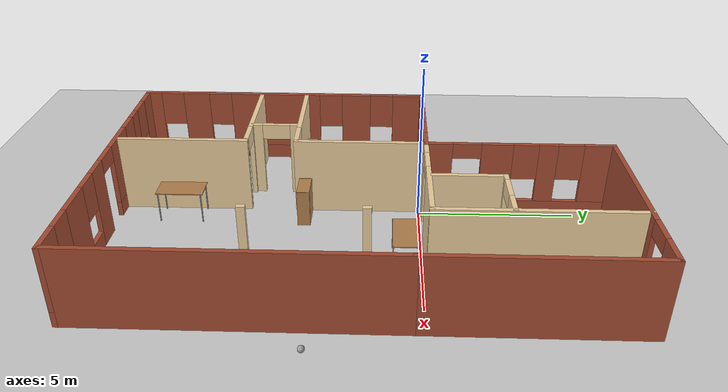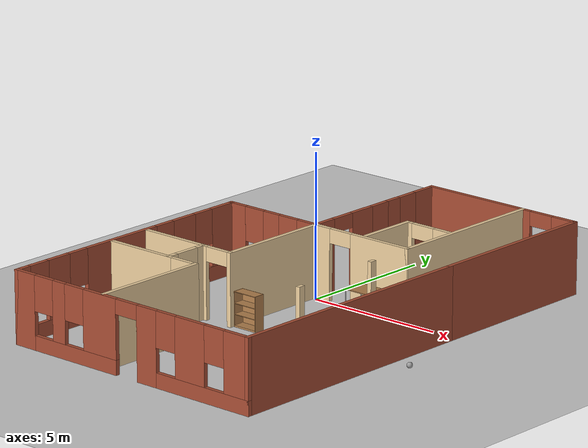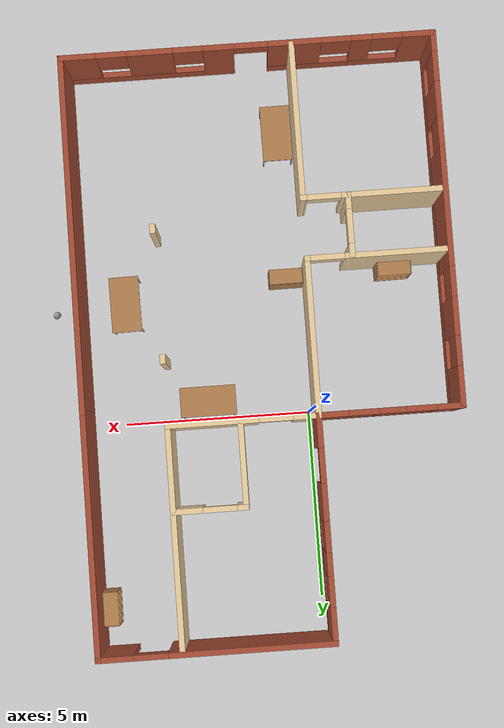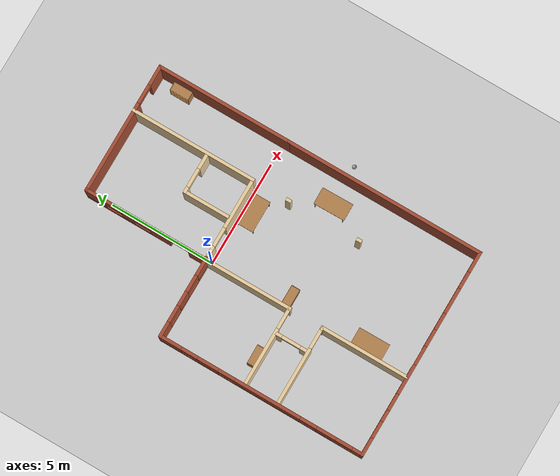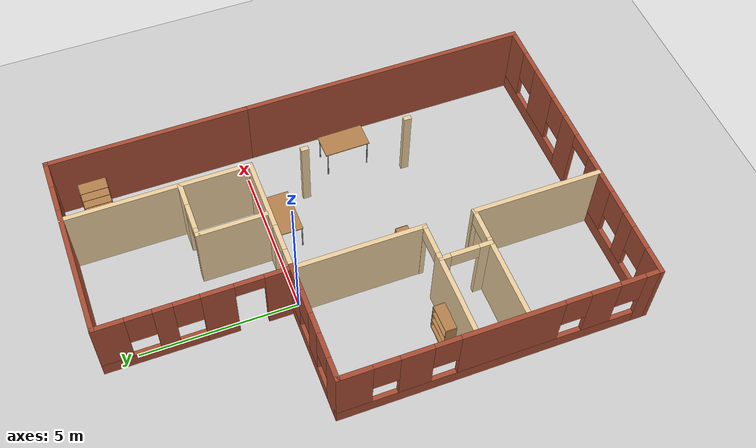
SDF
<sdf version="1.6">
 <world name="default">
  <light name="sun" type="directional">
   <pose>0 0 10 0 -0 0</pose>
   <diffuse>0.8 0.8 0.8 1</diffuse>
   <specular>0.2 0.2 0.2 1</specular>
   <attenuation>
    <range>1000</range>
    <constant>0.9</constant>
    <linear>0.01</linear>
    <quadratic>0.001</quadratic>
   </attenuation>
   <direction>-0.5 0.1 -0.9</direction>
  </light>
  <model name="ground_plane">
   <static>1</static>
   <link name="link">
    <collision name="collision">
     <geometry><plane><normal>0 0 1</normal><size>100 100</size></plane></geometry>
     <surface><friction><ode><mu>100</mu><mu2>50</mu2></ode></friction></surface>
    </collision>
    <visual name="visual">
     <cast_shadows>0</cast_shadows>
     <geometry><plane><normal>0 0 1</normal><size>100 100</size></plane></geometry>
     <material>
      <script><uri>file://media/materials/scripts/gazebo.material</uri><name>Gazebo/Grey</name></script>
     </material>
    </visual>
   </link>
  </model>
  <gravity>0 0 -9.8</gravity>
  <magnetic_field>6e-06 2.3e-05 -4.2e-05</magnetic_field>
  <atmosphere type="adiabatic"/>
  <physics name="default_physics" default="0" type="ode">
   <max_step_size>0.001</max_step_size>
   <real_time_factor>1</real_time_factor>
   <real_time_update_rate>1000</real_time_update_rate>
  </physics>
  <scene><ambient>0.4 0.4 0.4 1</ambient><background>0.7 0.7 0.7 1</background><shadows>1</shadows></scene>
  <spherical_coordinates>
   <surface_model>EARTH_WGS84</surface_model>
   <latitude_deg>0</latitude_deg>
   <longitude_deg>0</longitude_deg>
   <elevation>0</elevation>
   <heading_deg>0</heading_deg>
  </spherical_coordinates>
  <model name="house">
   <pose>1.01135 -1.82861 0 0 -0 0</pose>
   <link name="Wall_103">
    <pose>-1.175 4.925 0 0 -0 1.5708</pose>
    <visual name="Wall_103_Visual_0">
     <pose>-2.54292 0 1.25 0 -0 0</pose>
     <geometry><box><size>0.914167 0.15 2.5</size></box></geometry>
     <material>
      <script><uri>file://media/materials/scripts/gazebo.material</uri><name>Gazebo/Bricks</name></script>
      <ambient>1 1 1 1</ambient>
     </material>
     <meta><layer>0</layer></meta>
    </visual>
    <collision name="Wall_103_Collision_0">
     <geometry><box><size>0.914167 0.15 2.5</size></box></geometry>
     <pose>-2.54292 0 1.25 0 -0 0</pose>
    </collision>
    <visual name="Wall_103_Visual_1">
     <pose>-0.689609 0 1.25 0 -0 0</pose>
     <geometry><box><size>0.992449 0.15 2.5</size></box></geometry>
     <material>
      <script><uri>file://media/materials/scripts/gazebo.material</uri><name>Gazebo/Bricks</name></script>
      <ambient>1 1 1 1</ambient>
     </material>
     <meta><layer>0</layer></meta>
    </visual>
    <collision name="Wall_103_Collision_1">
     <geometry><box><size>0.992449 0.15 2.5</size></box></geometry>
     <pose>-0.689609 0 1.25 0 -0 0</pose>
    </collision>
    <visual name="Wall_103_Visual_2">
     <pose>1.40331 0 0.25 0 -0 0</pose>
     <geometry><box><size>3.19338 0.15 0.5</size></box></geometry>
     <material>
      <script><uri>file://media/materials/scripts/gazebo.material</uri><name>Gazebo/Bricks</name></script>
      <ambient>1 1 1 1</ambient>
     </material>
     <meta><layer>0</layer></meta>
    </visual>
    <collision name="Wall_103_Collision_2">
     <geometry><box><size>3.19338 0.15 0.5</size></box></geometry>
     <pose>1.40331 0 0.25 0 -0 0</pose>
    </collision>
    <visual name="Wall_103_Visual_3">
     <pose>0.905775 0 1.5 0 -0 0</pose>
     <geometry><box><size>0.598318 0.15 2</size></box></geometry>
     <material>
      <script><uri>file://media/materials/scripts/gazebo.material</uri><name>Gazebo/Bricks</name></script>
      <ambient>1 1 1 1</ambient>
     </material>
     <meta><layer>0</layer></meta>
    </visual>
    <collision name="Wall_103_Collision_3">
     <geometry><box><size>0.598318 0.15 2</size></box></geometry>
     <pose>0.905775 0 1.5 0 -0 0</pose>
    </collision>
    <visual name="Wall_103_Visual_4">
     <pose>2.50247 0 1.5 0 -0 0</pose>
     <geometry><box><size>0.995066 0.15 2</size></box></geometry>
     <material>
      <script><uri>file://media/materials/scripts/gazebo.material</uri><name>Gazebo/Bricks</name></script>
      <ambient>1 1 1 1</ambient>
     </material>
     <meta><layer>0</layer></meta>
    </visual>
    <collision name="Wall_103_Collision_4">
     <geometry><box><size>0.995066 0.15 2</size></box></geometry>
     <pose>2.50247 0 1.5 0 -0 0</pose>
    </collision>
    <visual name="Wall_103_Visual_5">
     <pose>0.206616 0 1.9 0 -0 0</pose>
     <geometry><box><size>0.8 0.15 1.2</size></box></geometry>
     <material>
      <script><uri>file://media/materials/scripts/gazebo.material</uri><name>Gazebo/Bricks</name></script>
      <ambient>1 1 1 1</ambient>
     </material>
     <meta><layer>0</layer></meta>
    </visual>
    <collision name="Wall_103_Collision_5">
     <geometry><box><size>0.8 0.15 1.2</size></box></geometry>
     <pose>0.206616 0 1.9 0 -0 0</pose>
    </collision>
    <visual name="Wall_103_Visual_6">
     <pose>1.60493 0 1.9 0 -0 0</pose>
     <geometry><box><size>0.8 0.15 1.2</size></box></geometry>
     <material>
      <script><uri>file://media/materials/scripts/gazebo.material</uri><name>Gazebo/Bricks</name></script>
      <ambient>1 1 1 1</ambient>
     </material>
     <meta><layer>0</layer></meta>
    </visual>
    <collision name="Wall_103_Collision_6">
     <geometry><box><size>0.8 0.15 1.2</size></box></geometry>
     <pose>1.60493 0 1.9 0 -0 0</pose>
    </collision>
    <visual name="Wall_103_Visual_7">
     <pose>-1.63583 0 2.25 0 -0 0</pose>
     <geometry><box><size>0.9 0.15 0.5</size></box></geometry>
     <material>
      <script><uri>file://media/materials/scripts/gazebo.material</uri><name>Gazebo/Bricks</name></script>
      <ambient>1 1 1 1</ambient>
     </material>
     <meta><layer>0</layer></meta>
    </visual>
    <collision name="Wall_103_Collision_7">
     <geometry><box><size>0.9 0.15 0.5</size></box></geometry>
     <pose>-1.63583 0 2.25 0 -0 0</pose>
    </collision>
   </link>
   <link name="Wall_105">
    <pose>-3.02063 2 0 0 -0 0</pose>
    <visual name="Wall_105_Visual_0">
     <pose>-1.60034 0 1.25 0 -0 0</pose>
     <geometry><box><size>0.758079 0.15 2.5</size></box></geometry>
     <material>
      <script><uri>file://media/materials/scripts/gazebo.material</uri><name>Gazebo/Bricks</name></script>
      <ambient>1 1 1 1</ambient>
     </material>
     <meta><layer>0</layer></meta>
    </visual>
    <collision name="Wall_105_Collision_0">
     <geometry><box><size>0.758079 0.15 2.5</size></box></geometry>
     <pose>-1.60034 0 1.25 0 -0 0</pose>
    </collision>
    <visual name="Wall_105_Visual_1">
     <pose>0.37904 0 0.25 0 -0 0</pose>
     <geometry><box><size>3.20067 0.15 0.5</size></box></geometry>
     <material>
      <script><uri>file://media/materials/scripts/gazebo.material</uri><name>Gazebo/Bricks</name></script>
      <ambient>1 1 1 1</ambient>
     </material>
     <meta><layer>0</layer></meta>
    </visual>
    <collision name="Wall_105_Collision_1">
     <geometry><box><size>3.20067 0.15 0.5</size></box></geometry>
     <pose>0.37904 0 0.25 0 -0 0</pose>
    </collision>
    <visual name="Wall_105_Visual_2">
     <pose>-0.079355 0 1.5 0 -0 0</pose>
     <geometry><box><size>0.683879 0.15 2</size></box></geometry>
     <material>
      <script><uri>file://media/materials/scripts/gazebo.material</uri><name>Gazebo/Bricks</name></script>
      <ambient>1 1 1 1</ambient>
     </material>
     <meta><layer>0</layer></meta>
    </visual>
    <collision name="Wall_105_Collision_2">
     <geometry><box><size>0.683879 0.15 2</size></box></geometry>
     <pose>-0.079355 0 1.5 0 -0 0</pose>
    </collision>
    <visual name="Wall_105_Visual_3">
     <pose>1.52098 0 1.5 0 -0 0</pose>
     <geometry><box><size>0.91679 0.15 2</size></box></geometry>
     <material>
      <script><uri>file://media/materials/scripts/gazebo.material</uri><name>Gazebo/Bricks</name></script>
      <ambient>1 1 1 1</ambient>
     </material>
     <meta><layer>0</layer></meta>
    </visual>
    <collision name="Wall_105_Collision_3">
     <geometry><box><size>0.91679 0.15 2</size></box></geometry>
     <pose>1.52098 0 1.5 0 -0 0</pose>
    </collision>
    <visual name="Wall_105_Visual_4">
     <pose>-0.821295 0 1.9 0 -0 0</pose>
     <geometry><box><size>0.8 0.15 1.2</size></box></geometry>
     <material>
      <script><uri>file://media/materials/scripts/gazebo.material</uri><name>Gazebo/Bricks</name></script>
      <ambient>1 1 1 1</ambient>
     </material>
     <meta><layer>0</layer></meta>
    </visual>
    <collision name="Wall_105_Collision_4">
     <geometry><box><size>0.8 0.15 1.2</size></box></geometry>
     <pose>-0.821295 0 1.9 0 -0 0</pose>
    </collision>
    <visual name="Wall_105_Visual_5">
     <pose>0.662584 0 1.9 0 -0 0</pose>
     <geometry><box><size>0.8 0.15 1.2</size></box></geometry>
     <material>
      <script><uri>file://media/materials/scripts/gazebo.material</uri><name>Gazebo/Bricks</name></script>
      <ambient>1 1 1 1</ambient>
     </material>
     <meta><layer>0</layer></meta>
    </visual>
    <collision name="Wall_105_Collision_5">
     <geometry><box><size>0.8 0.15 1.2</size></box></geometry>
     <pose>0.662584 0 1.9 0 -0 0</pose>
    </collision>
   </link>
   <link name="Wall_107">
    <pose>1.875 7.85 0 0 -0 0</pose>
    <visual name="Wall_107_Visual_0">
     <pose>-0.942379 0 1.25 0 -0 0</pose>
     <geometry><box><size>4.36524 0.15 2.5</size></box></geometry>
     <material>
      <script><uri>file://media/materials/scripts/gazebo.material</uri><name>Gazebo/Bricks</name></script>
      <ambient>1 1 1 1</ambient>
     </material>
     <meta><layer>0</layer></meta>
    </visual>
    <collision name="Wall_107_Collision_0">
     <geometry><box><size>4.36524 0.15 2.5</size></box></geometry>
     <pose>-0.942379 0 1.25 0 -0 0</pose>
    </collision>
    <visual name="Wall_107_Visual_1">
     <pose>2.63262 0 1.25 0 -0 0</pose>
     <geometry><box><size>0.984758 0.15 2.5</size></box></geometry>
     <material>
      <script><uri>file://media/materials/scripts/gazebo.material</uri><name>Gazebo/Bricks</name></script>
      <ambient>1 1 1 1</ambient>
     </material>
     <meta><layer>0</layer></meta>
    </visual>
    <collision name="Wall_107_Collision_1">
     <geometry><box><size>0.984758 0.15 2.5</size></box></geometry>
     <pose>2.63262 0 1.25 0 -0 0</pose>
    </collision>
    <visual name="Wall_107_Visual_2">
     <pose>1.69024 0 2.25 0 -0 0</pose>
     <geometry><box><size>0.9 0.15 0.5</size></box></geometry>
     <material>
      <script><uri>file://media/materials/scripts/gazebo.material</uri><name>Gazebo/Bricks</name></script>
      <ambient>1 1 1 1</ambient>
     </material>
     <meta><layer>0</layer></meta>
    </visual>
    <collision name="Wall_107_Collision_2">
     <geometry><box><size>0.9 0.15 0.5</size></box></geometry>
     <pose>1.69024 0 2.25 0 -0 0</pose>
    </collision>
   </link>
   <link name="Wall_116">
    <collision name="Wall_116_Collision">
     <geometry><box><size>6.5 0.15 2.5</size></box></geometry>
     <pose>0 0 1.25 0 -0 0</pose>
    </collision>
    <visual name="Wall_116_Visual">
     <pose>0 0 1.25 0 -0 0</pose>
     <geometry><box><size>6.5 0.15 2.5</size></box></geometry>
     <material>
      <script><uri>file://media/materials/scripts/gazebo.material</uri><name>Gazebo/Bricks</name></script>
      <ambient>1 1 1 1</ambient>
     </material>
     <meta><layer>0</layer></meta>
    </visual>
    <pose>4.925 4.675 0 0 0 -1.5708</pose>
   </link>
   <link name="Wall_137">
    <collision name="Wall_137_Collision">
     <geometry><box><size>4.25 0.15 2.5</size></box></geometry>
     <pose>0 0 1.25 0 -0 0</pose>
    </collision>
    <visual name="Wall_137_Visual">
     <pose>0 0 1.25 0 -0 0</pose>
     <geometry><box><size>4.25 0.15 2.5</size></box></geometry>
     <material>
      <script><uri>file://media/materials/scripts/gazebo.material</uri><name>Gazebo/Grey</name></script>
      <ambient>0.921569 0.807843 0.615686 1</ambient>
     </material>
     <meta><layer>0</layer></meta>
    </visual>
    <pose>-1.175 -5.75 0 0 0 -1.5708</pose>
   </link>
   <link name="Wall_139">
    <pose>-2.975 -3.7 0 0 -0 3.14159</pose>
    <visual name="Wall_139_Visual_0">
     <pose>-1.78069 0 1.25 0 -0 0</pose>
     <geometry><box><size>0.188621 0.15 2.5</size></box></geometry>
     <material>
      <script><uri>file://media/materials/scripts/gazebo.material</uri><name>Gazebo/Grey</name></script>
      <ambient>0.921569 0.807843 0.615686 1</ambient>
     </material>
     <meta><layer>0</layer></meta>
    </visual>
    <collision name="Wall_139_Collision_0">
     <geometry><box><size>0.188621 0.15 2.5</size></box></geometry>
     <pose>-1.78069 0 1.25 0 -0 0</pose>
    </collision>
    <visual name="Wall_139_Visual_1">
     <pose>0.54431 0 1.25 0 -0 0</pose>
     <geometry><box><size>2.66138 0.15 2.5</size></box></geometry>
     <material>
      <script><uri>file://media/materials/scripts/gazebo.material</uri><name>Gazebo/Grey</name></script>
      <ambient>0.921569 0.807843 0.615686 1</ambient>
     </material>
     <meta><layer>0</layer></meta>
    </visual>
    <collision name="Wall_139_Collision_1">
     <geometry><box><size>2.66138 0.15 2.5</size></box></geometry>
     <pose>0.54431 0 1.25 0 -0 0</pose>
    </collision>
    <visual name="Wall_139_Visual_2">
     <pose>-1.23638 0 2.25 0 -0 0</pose>
     <geometry><box><size>0.9 0.15 0.5</size></box></geometry>
     <material>
      <script><uri>file://media/materials/scripts/gazebo.material</uri><name>Gazebo/Grey</name></script>
      <ambient>0.921569 0.807843 0.615686 1</ambient>
     </material>
     <meta><layer>0</layer></meta>
    </visual>
    <collision name="Wall_139_Collision_2">
     <geometry><box><size>0.9 0.15 0.5</size></box></geometry>
     <pose>-1.23638 0 2.25 0 -0 0</pose>
    </collision>
   </link>
   <link name="Wall_143">
    <pose>-2.36246 -2.90327 0 0 0 -1.5708</pose>
    <visual name="Wall_143_Visual_0">
     <pose>-0.667997 0 1.25 0 -0 0</pose>
     <geometry><box><size>0.373609 0.15 2.5</size></box></geometry>
     <material>
      <script><uri>file://media/materials/scripts/gazebo.material</uri><name>Gazebo/Grey</name></script>
      <ambient>0.921569 0.807843 0.615686 1</ambient>
     </material>
     <meta><layer>0</layer></meta>
    </visual>
    <collision name="Wall_143_Collision_0">
     <geometry><box><size>0.373609 0.15 2.5</size></box></geometry>
     <pose>-0.667997 0 1.25 0 -0 0</pose>
    </collision>
    <visual name="Wall_143_Visual_1">
     <pose>0.636805 0 1.25 0 -0 0</pose>
     <geometry><box><size>0.435994 0.15 2.5</size></box></geometry>
     <material>
      <script><uri>file://media/materials/scripts/gazebo.material</uri><name>Gazebo/Grey</name></script>
      <ambient>0.921569 0.807843 0.615686 1</ambient>
     </material>
     <meta><layer>0</layer></meta>
    </visual>
    <collision name="Wall_143_Collision_1">
     <geometry><box><size>0.435994 0.15 2.5</size></box></geometry>
     <pose>0.636805 0 1.25 0 -0 0</pose>
    </collision>
    <visual name="Wall_143_Visual_2">
     <pose>-0.031192 0 2.25 0 -0 0</pose>
     <geometry><box><size>0.9 0.15 0.5</size></box></geometry>
     <material>
      <script><uri>file://media/materials/scripts/gazebo.material</uri><name>Gazebo/Grey</name></script>
      <ambient>0.921569 0.807843 0.615686 1</ambient>
     </material>
     <meta><layer>0</layer></meta>
    </visual>
    <collision name="Wall_143_Collision_2">
     <geometry><box><size>0.9 0.15 0.5</size></box></geometry>
     <pose>-0.031192 0 2.25 0 -0 0</pose>
    </collision>
   </link>
   <link name="Wall_149">
    <pose>0.829374 2 0 0 -0 0</pose>
    <visual name="Wall_149_Visual_0">
     <pose>-1.67334 0 1.25 0 -0 0</pose>
     <geometry><box><size>0.653328 0.15 2.5</size></box></geometry>
     <material>
      <script><uri>file://media/materials/scripts/gazebo.material</uri><name>Gazebo/Grey</name></script>
      <ambient>0.921569 0.807843 0.615686 1</ambient>
     </material>
     <meta><layer>0</layer></meta>
    </visual>
    <collision name="Wall_149_Collision_0">
     <geometry><box><size>0.653328 0.15 2.5</size></box></geometry>
     <pose>-1.67334 0 1.25 0 -0 0</pose>
    </collision>
    <visual name="Wall_149_Visual_1">
     <pose>0.776664 0 1.25 0 -0 0</pose>
     <geometry><box><size>2.44667 0.15 2.5</size></box></geometry>
     <material>
      <script><uri>file://media/materials/scripts/gazebo.material</uri><name>Gazebo/Grey</name></script>
      <ambient>0.921569 0.807843 0.615686 1</ambient>
     </material>
     <meta><layer>0</layer></meta>
    </visual>
    <collision name="Wall_149_Collision_1">
     <geometry><box><size>2.44667 0.15 2.5</size></box></geometry>
     <pose>0.776664 0 1.25 0 -0 0</pose>
    </collision>
    <visual name="Wall_149_Visual_2">
     <pose>-0.896672 0 2.25 0 -0 0</pose>
     <geometry><box><size>0.9 0.15 0.5</size></box></geometry>
     <material>
      <script><uri>file://media/materials/scripts/gazebo.material</uri><name>Gazebo/Grey</name></script>
      <ambient>0.921569 0.807843 0.615686 1</ambient>
     </material>
     <meta><layer>0</layer></meta>
    </visual>
    <collision name="Wall_149_Collision_2">
     <geometry><box><size>0.9 0.15 0.5</size></box></geometry>
     <pose>-0.896672 0 2.25 0 -0 0</pose>
    </collision>
   </link>
   <link name="Wall_151">
    <collision name="Wall_151_Collision">
     <geometry><box><size>6 0.15 2.5</size></box></geometry>
     <pose>0 0 1.25 0 -0 0</pose>
    </collision>
    <visual name="Wall_151_Visual">
     <pose>0 0 1.25 0 -0 0</pose>
     <geometry><box><size>6 0.15 2.5</size></box></geometry>
     <material>
      <script><uri>file://media/materials/scripts/gazebo.material</uri><name>Gazebo/Grey</name></script>
      <ambient>0.921569 0.807843 0.615686 1</ambient>
     </material>
     <meta><layer>0</layer></meta>
    </visual>
    <pose>2.75437 4.925 0 0 -0 1.5708</pose>
   </link>
   <link name="Wall_153">
    <collision name="Wall_153_Collision">
     <geometry><box><size>2.25 0.15 2.5</size></box></geometry>
     <pose>0 0 1.25 0 -0 0</pose>
    </collision>
    <visual name="Wall_153_Visual">
     <pose>0 0 1.25 0 -0 0</pose>
     <geometry><box><size>2.25 0.15 2.5</size></box></geometry>
     <material>
      <script><uri>file://media/materials/scripts/gazebo.material</uri><name>Gazebo/Grey</name></script>
      <ambient>0.921569 0.807843 0.615686 1</ambient>
     </material>
     <meta><layer>0</layer></meta>
    </visual>
    <pose>0.863268 3.17275 0 0 -0 1.5708</pose>
   </link>
   <link name="Wall_154">
    <pose>1.78827 4.22275 0 0 -0 0</pose>
    <visual name="Wall_154_Visual_0">
     <pose>-0.847175 0 1.25 0 -0 0</pose>
     <geometry><box><size>0.30565 0.15 2.5</size></box></geometry>
     <material>
      <script><uri>file://media/materials/scripts/gazebo.material</uri><name>Gazebo/Grey</name></script>
      <ambient>0.921569 0.807843 0.615686 1</ambient>
     </material>
     <meta><layer>0</layer></meta>
    </visual>
    <collision name="Wall_154_Collision_0">
     <geometry><box><size>0.30565 0.15 2.5</size></box></geometry>
     <pose>-0.847175 0 1.25 0 -0 0</pose>
    </collision>
    <visual name="Wall_154_Visual_1">
     <pose>0.602825 0 1.25 0 -0 0</pose>
     <geometry><box><size>0.79435 0.15 2.5</size></box></geometry>
     <material>
      <script><uri>file://media/materials/scripts/gazebo.material</uri><name>Gazebo/Grey</name></script>
      <ambient>0.921569 0.807843 0.615686 1</ambient>
     </material>
     <meta><layer>0</layer></meta>
    </visual>
    <collision name="Wall_154_Collision_1">
     <geometry><box><size>0.79435 0.15 2.5</size></box></geometry>
     <pose>0.602825 0 1.25 0 -0 0</pose>
    </collision>
    <visual name="Wall_154_Visual_2">
     <pose>-0.24435 0 2.25 0 -0 0</pose>
     <geometry><box><size>0.9 0.15 0.5</size></box></geometry>
     <material>
      <script><uri>file://media/materials/scripts/gazebo.material</uri><name>Gazebo/Grey</name></script>
      <ambient>0.921569 0.807843 0.615686 1</ambient>
     </material>
     <meta><layer>0</layer></meta>
    </visual>
    <collision name="Wall_154_Collision_2">
     <geometry><box><size>0.9 0.15 0.5</size></box></geometry>
     <pose>-0.24435 0 2.25 0 -0 0</pose>
    </collision>
   </link>
   <link name="Wall_156">
    <collision name="Wall_156_Collision">
     <geometry><box><size>0.25 0.15 2.5</size></box></geometry>
     <pose>0 0 1.25 0 -0 0</pose>
    </collision>
    <visual name="Wall_156_Visual">
     <pose>0 0 1.25 0 -0 0</pose>
     <geometry><box><size>0.25 0.15 2.5</size></box></geometry>
     <material>
      <script><uri>file://media/materials/scripts/gazebo.material</uri><name>Gazebo/Grey</name></script>
      <ambient>0.921569 0.807843 0.615686 1</ambient>
     </material>
     <meta><layer>0</layer></meta>
    </visual>
    <pose>2.76084 0.255188 0 0 0 -1.5708</pose>
   </link>
   <link name="Wall_158">
    <collision name="Wall_158_Collision">
     <geometry><box><size>0.25 0.15 2.5</size></box></geometry>
     <pose>0 0 1.25 0 -0 0</pose>
    </collision>
    <visual name="Wall_158_Visual">
     <pose>0 0 1.25 0 -0 0</pose>
     <geometry><box><size>0.25 0.15 2.5</size></box></geometry>
     <material>
      <script><uri>file://media/materials/scripts/gazebo.material</uri><name>Gazebo/Grey</name></script>
      <ambient>0.921569 0.807843 0.615686 1</ambient>
     </material>
     <meta><layer>0</layer></meta>
    </visual>
    <pose>2.80209 -3.16869 0 0 0 -1.5708</pose>
   </link>
   <link name="Wall_62">
    <pose>0 -7.85 0 0 -0 0</pose>
    <visual name="Wall_62_Visual_0">
     <pose>-4.55783 0 1.25 0 -0 0</pose>
     <geometry><box><size>0.88435 0.15 2.5</size></box></geometry>
     <material>
      <script><uri>file://media/materials/scripts/gazebo.material</uri><name>Gazebo/Bricks</name></script>
      <ambient>1 1 1 1</ambient>
     </material>
     <meta><layer>0</layer></meta>
    </visual>
    <collision name="Wall_62_Collision_0">
     <geometry><box><size>0.88435 0.15 2.5</size></box></geometry>
     <pose>-4.55783 0 1.25 0 -0 0</pose>
    </collision>
    <visual name="Wall_62_Visual_1">
     <pose>0.7542 0 1.25 0 -0 0</pose>
     <geometry><box><size>0.820686 0.15 2.5</size></box></geometry>
     <material>
      <script><uri>file://media/materials/scripts/gazebo.material</uri><name>Gazebo/Bricks</name></script>
      <ambient>1 1 1 1</ambient>
     </material>
     <meta><layer>0</layer></meta>
    </visual>
    <collision name="Wall_62_Collision_1">
     <geometry><box><size>0.820686 0.15 2.5</size></box></geometry>
     <pose>0.7542 0 1.25 0 -0 0</pose>
    </collision>
    <visual name="Wall_62_Visual_2">
     <pose>-2.3359 0 0.25 0 -0 0</pose>
     <geometry><box><size>3.55951 0.15 0.5</size></box></geometry>
     <material>
      <script><uri>file://media/materials/scripts/gazebo.material</uri><name>Gazebo/Bricks</name></script>
      <ambient>1 1 1 1</ambient>
     </material>
     <meta><layer>0</layer></meta>
    </visual>
    <collision name="Wall_62_Collision_2">
     <geometry><box><size>3.55951 0.15 0.5</size></box></geometry>
     <pose>-2.3359 0 0.25 0 -0 0</pose>
    </collision>
    <visual name="Wall_62_Visual_3">
     <pose>3.08227 0 0.25 0 -0 0</pose>
     <geometry><box><size>3.83546 0.15 0.5</size></box></geometry>
     <material>
      <script><uri>file://media/materials/scripts/gazebo.material</uri><name>Gazebo/Bricks</name></script>
      <ambient>1 1 1 1</ambient>
     </material>
     <meta><layer>0</layer></meta>
    </visual>
    <collision name="Wall_62_Collision_3">
     <geometry><box><size>3.83546 0.15 0.5</size></box></geometry>
     <pose>3.08227 0 0.25 0 -0 0</pose>
    </collision>
    <visual name="Wall_62_Visual_4">
     <pose>-3.04531 0 1.5 0 -0 0</pose>
     <geometry><box><size>0.540674 0.15 2</size></box></geometry>
     <material>
      <script><uri>file://media/materials/scripts/gazebo.material</uri><name>Gazebo/Bricks</name></script>
      <ambient>1 1 1 1</ambient>
     </material>
     <meta><layer>0</layer></meta>
    </visual>
    <collision name="Wall_62_Collision_4">
     <geometry><box><size>0.540674 0.15 2</size></box></geometry>
     <pose>-3.04531 0 1.5 0 -0 0</pose>
    </collision>
    <visual name="Wall_62_Visual_5">
     <pose>-1.26556 0 1.5 0 -0 0</pose>
     <geometry><box><size>1.41883 0.15 2</size></box></geometry>
     <material>
      <script><uri>file://media/materials/scripts/gazebo.material</uri><name>Gazebo/Bricks</name></script>
      <ambient>1 1 1 1</ambient>
     </material>
     <meta><layer>0</layer></meta>
    </visual>
    <collision name="Wall_62_Collision_5">
     <geometry><box><size>1.41883 0.15 2</size></box></geometry>
     <pose>-1.26556 0 1.5 0 -0 0</pose>
    </collision>
    <visual name="Wall_62_Visual_6">
     <pose>-1.26556 0 1.5 0 -0 0</pose>
     <geometry><box><size>1.41883 0.15 2</size></box></geometry>
     <material>
      <script><uri>file://media/materials/scripts/gazebo.material</uri><name>Gazebo/Bricks</name></script>
      <ambient>1 1 1 1</ambient>
     </material>
     <meta><layer>0</layer></meta>
    </visual>
    <collision name="Wall_62_Collision_6">
     <geometry><box><size>1.41883 0.15 2</size></box></geometry>
     <pose>-1.26556 0 1.5 0 -0 0</pose>
    </collision>
    <visual name="Wall_62_Visual_7">
     <pose>2.57521 0 1.5 0 -0 0</pose>
     <geometry><box><size>1.22132 0.15 2</size></box></geometry>
     <material>
      <script><uri>file://media/materials/scripts/gazebo.material</uri><name>Gazebo/Bricks</name></script>
      <ambient>1 1 1 1</ambient>
     </material>
     <meta><layer>0</layer></meta>
    </visual>
    <collision name="Wall_62_Collision_7">
     <geometry><box><size>1.22132 0.15 2</size></box></geometry>
     <pose>2.57521 0 1.5 0 -0 0</pose>
    </collision>
    <visual name="Wall_62_Visual_8">
     <pose>4.49293 0 1.5 0 -0 0</pose>
     <geometry><box><size>1.01413 0.15 2</size></box></geometry>
     <material>
      <script><uri>file://media/materials/scripts/gazebo.material</uri><name>Gazebo/Bricks</name></script>
      <ambient>1 1 1 1</ambient>
     </material>
     <meta><layer>0</layer></meta>
    </visual>
    <collision name="Wall_62_Collision_8">
     <geometry><box><size>1.01413 0.15 2</size></box></geometry>
     <pose>4.49293 0 1.5 0 -0 0</pose>
    </collision>
    <visual name="Wall_62_Visual_9">
     <pose>-3.71565 0 1.9 0 -0 0</pose>
     <geometry><box><size>0.8 0.15 1.2</size></box></geometry>
     <material>
      <script><uri>file://media/materials/scripts/gazebo.material</uri><name>Gazebo/Bricks</name></script>
      <ambient>1 1 1 1</ambient>
     </material>
     <meta><layer>0</layer></meta>
    </visual>
    <collision name="Wall_62_Collision_9">
     <geometry><box><size>0.8 0.15 1.2</size></box></geometry>
     <pose>-3.71565 0 1.9 0 -0 0</pose>
    </collision>
    <visual name="Wall_62_Visual_10">
     <pose>1.56454 0 1.9 0 -0 0</pose>
     <geometry><box><size>0.8 0.15 1.2</size></box></geometry>
     <material>
      <script><uri>file://media/materials/scripts/gazebo.material</uri><name>Gazebo/Bricks</name></script>
      <ambient>1 1 1 1</ambient>
     </material>
     <meta><layer>0</layer></meta>
    </visual>
    <collision name="Wall_62_Collision_10">
     <geometry><box><size>0.8 0.15 1.2</size></box></geometry>
     <pose>1.56454 0 1.9 0 -0 0</pose>
    </collision>
    <visual name="Wall_62_Visual_11">
     <pose>-2.37498 0 1.9 0 -0 0</pose>
     <geometry><box><size>0.8 0.15 1.2</size></box></geometry>
     <material>
      <script><uri>file://media/materials/scripts/gazebo.material</uri><name>Gazebo/Bricks</name></script>
      <ambient>1 1 1 1</ambient>
     </material>
     <meta><layer>0</layer></meta>
    </visual>
    <collision name="Wall_62_Collision_11">
     <geometry><box><size>0.8 0.15 1.2</size></box></geometry>
     <pose>-2.37498 0 1.9 0 -0 0</pose>
    </collision>
    <visual name="Wall_62_Visual_12">
     <pose>3.58587 0 1.9 0 -0 0</pose>
     <geometry><box><size>0.8 0.15 1.2</size></box></geometry>
     <material>
      <script><uri>file://media/materials/scripts/gazebo.material</uri><name>Gazebo/Bricks</name></script>
      <ambient>1 1 1 1</ambient>
     </material>
     <meta><layer>0</layer></meta>
    </visual>
    <collision name="Wall_62_Collision_12">
     <geometry><box><size>0.8 0.15 1.2</size></box></geometry>
     <pose>3.58587 0 1.9 0 -0 0</pose>
    </collision>
    <visual name="Wall_62_Visual_13">
     <pose>-0.106143 0 2.25 0 -0 0</pose>
     <geometry><box><size>0.9 0.15 0.5</size></box></geometry>
     <material>
      <script><uri>file://media/materials/scripts/gazebo.material</uri><name>Gazebo/Bricks</name></script>
      <ambient>1 1 1 1</ambient>
     </material>
     <meta><layer>0</layer></meta>
    </visual>
    <collision name="Wall_62_Collision_13">
     <geometry><box><size>0.9 0.15 0.5</size></box></geometry>
     <pose>-0.106143 0 2.25 0 -0 0</pose>
    </collision>
    <visual name="Wall_62_Visual_14">
     <pose>-0.106143 0 2.25 0 -0 0</pose>
     <geometry><box><size>0.9 0.15 0.5</size></box></geometry>
     <material>
      <script><uri>file://media/materials/scripts/gazebo.material</uri><name>Gazebo/Bricks</name></script>
      <ambient>1 1 1 1</ambient>
     </material>
     <meta><layer>0</layer></meta>
    </visual>
    <collision name="Wall_62_Collision_14">
     <geometry><box><size>0.9 0.15 0.5</size></box></geometry>
     <pose>-0.106143 0 2.25 0 -0 0</pose>
    </collision>
   </link>
   <link name="Wall_64">
    <pose>-4.925 -2.925 0 0 -0 1.5708</pose>
    <visual name="Wall_64_Visual_0">
     <pose>-4.71504 0 1.25 0 -0 0</pose>
     <geometry><box><size>0.569922 0.15 2.5</size></box></geometry>
     <material>
      <script><uri>file://media/materials/scripts/gazebo.material</uri><name>Gazebo/Bricks</name></script>
      <ambient>1 1 1 1</ambient>
     </material>
     <meta><layer>0</layer></meta>
    </visual>
    <collision name="Wall_64_Collision_0">
     <geometry><box><size>0.569922 0.15 2.5</size></box></geometry>
     <pose>-4.71504 0 1.25 0 -0 0</pose>
    </collision>
    <visual name="Wall_64_Visual_1">
     <pose>0.284961 0 0.25 0 -0 0</pose>
     <geometry><box><size>9.43008 0.15 0.5</size></box></geometry>
     <material>
      <script><uri>file://media/materials/scripts/gazebo.material</uri><name>Gazebo/Bricks</name></script>
      <ambient>1 1 1 1</ambient>
     </material>
     <meta><layer>0</layer></meta>
    </visual>
    <collision name="Wall_64_Collision_1">
     <geometry><box><size>9.43008 0.15 0.5</size></box></geometry>
     <pose>0.284961 0 0.25 0 -0 0</pose>
    </collision>
    <visual name="Wall_64_Visual_2">
     <pose>-3.1638 0 1.5 0 -0 0</pose>
     <geometry><box><size>0.932564 0.15 2</size></box></geometry>
     <material>
      <script><uri>file://media/materials/scripts/gazebo.material</uri><name>Gazebo/Bricks</name></script>
      <ambient>1 1 1 1</ambient>
     </material>
     <meta><layer>0</layer></meta>
    </visual>
    <collision name="Wall_64_Collision_2">
     <geometry><box><size>0.932564 0.15 2</size></box></geometry>
     <pose>-3.1638 0 1.5 0 -0 0</pose>
    </collision>
    <visual name="Wall_64_Visual_3">
     <pose>-0.307129 0 1.5 0 -0 0</pose>
     <geometry><box><size>3.18077 0.15 2</size></box></geometry>
     <material>
      <script><uri>file://media/materials/scripts/gazebo.material</uri><name>Gazebo/Bricks</name></script>
      <ambient>1 1 1 1</ambient>
     </material>
     <meta><layer>0</layer></meta>
    </visual>
    <collision name="Wall_64_Collision_3">
     <geometry><box><size>3.18077 0.15 2</size></box></geometry>
     <pose>-0.307129 0 1.5 0 -0 0</pose>
    </collision>
    <visual name="Wall_64_Visual_4">
     <pose>2.59079 0 1.5 0 -0 0</pose>
     <geometry><box><size>1.01507 0.15 2</size></box></geometry>
     <material>
      <script><uri>file://media/materials/scripts/gazebo.material</uri><name>Gazebo/Bricks</name></script>
      <ambient>1 1 1 1</ambient>
     </material>
     <meta><layer>0</layer></meta>
    </visual>
    <collision name="Wall_64_Collision_4">
     <geometry><box><size>1.01507 0.15 2</size></box></geometry>
     <pose>2.59079 0 1.5 0 -0 0</pose>
    </collision>
    <visual name="Wall_64_Visual_5">
     <pose>4.44916 0 1.5 0 -0 0</pose>
     <geometry><box><size>1.10168 0.15 2</size></box></geometry>
     <material>
      <script><uri>file://media/materials/scripts/gazebo.material</uri><name>Gazebo/Bricks</name></script>
      <ambient>1 1 1 1</ambient>
     </material>
     <meta><layer>0</layer></meta>
    </visual>
    <collision name="Wall_64_Collision_5">
     <geometry><box><size>1.10168 0.15 2</size></box></geometry>
     <pose>4.44916 0 1.5 0 -0 0</pose>
    </collision>
    <visual name="Wall_64_Visual_6">
     <pose>-4.03008 0 1.9 0 -0 0</pose>
     <geometry><box><size>0.8 0.15 1.2</size></box></geometry>
     <material>
      <script><uri>file://media/materials/scripts/gazebo.material</uri><name>Gazebo/Bricks</name></script>
      <ambient>1 1 1 1</ambient>
     </material>
     <meta><layer>0</layer></meta>
    </visual>
    <collision name="Wall_64_Collision_6">
     <geometry><box><size>0.8 0.15 1.2</size></box></geometry>
     <pose>-4.03008 0 1.9 0 -0 0</pose>
    </collision>
    <visual name="Wall_64_Visual_7">
     <pose>-2.29751 0 1.9 0 -0 0</pose>
     <geometry><box><size>0.8 0.15 1.2</size></box></geometry>
     <material>
      <script><uri>file://media/materials/scripts/gazebo.material</uri><name>Gazebo/Bricks</name></script>
      <ambient>1 1 1 1</ambient>
     </material>
     <meta><layer>0</layer></meta>
    </visual>
    <collision name="Wall_64_Collision_7">
     <geometry><box><size>0.8 0.15 1.2</size></box></geometry>
     <pose>-2.29751 0 1.9 0 -0 0</pose>
    </collision>
    <visual name="Wall_64_Visual_8">
     <pose>1.68326 0 1.9 0 -0 0</pose>
     <geometry><box><size>0.8 0.15 1.2</size></box></geometry>
     <material>
      <script><uri>file://media/materials/scripts/gazebo.material</uri><name>Gazebo/Bricks</name></script>
      <ambient>1 1 1 1</ambient>
     </material>
     <meta><layer>0</layer></meta>
    </visual>
    <collision name="Wall_64_Collision_8">
     <geometry><box><size>0.8 0.15 1.2</size></box></geometry>
     <pose>1.68326 0 1.9 0 -0 0</pose>
    </collision>
    <visual name="Wall_64_Visual_9">
     <pose>3.49832 0 1.9 0 -0 0</pose>
     <geometry><box><size>0.8 0.15 1.2</size></box></geometry>
     <material>
      <script><uri>file://media/materials/scripts/gazebo.material</uri><name>Gazebo/Bricks</name></script>
      <ambient>1 1 1 1</ambient>
     </material>
     <meta><layer>0</layer></meta>
    </visual>
    <collision name="Wall_64_Collision_9">
     <geometry><box><size>0.8 0.15 1.2</size></box></geometry>
     <pose>3.49832 0 1.9 0 -0 0</pose>
    </collision>
   </link>
   <link name="Wall_66">
    <collision name="Wall_66_Collision">
     <geometry><box><size>9.5 0.15 2.5</size></box></geometry>
     <pose>0 0 1.25 0 -0 0</pose>
    </collision>
    <visual name="Wall_66_Visual">
     <pose>0 0 1.25 0 -0 0</pose>
     <geometry><box><size>9.5 0.15 2.5</size></box></geometry>
     <material>
      <script><uri>file://media/materials/scripts/gazebo.material</uri><name>Gazebo/Bricks</name></script>
      <ambient>1 1 1 1</ambient>
     </material>
     <meta><layer>0</layer></meta>
    </visual>
    <pose>4.925 -3.175 0 0 0 -1.5708</pose>
   </link>
   <link name="Wall_91">
    <pose>-2.975 -2.1 0 0 -0 0</pose>
    <visual name="Wall_91_Visual_0">
     <pose>-0.53002 0 1.25 0 -0 0</pose>
     <geometry><box><size>2.68996 0.15 2.5</size></box></geometry>
     <material>
      <script><uri>file://media/materials/scripts/gazebo.material</uri><name>Gazebo/Grey</name></script>
      <ambient>0.921569 0.807843 0.615686 1</ambient>
     </material>
     <meta><layer>0</layer></meta>
    </visual>
    <collision name="Wall_91_Collision_0">
     <geometry><box><size>2.68996 0.15 2.5</size></box></geometry>
     <pose>-0.53002 0 1.25 0 -0 0</pose>
    </collision>
    <visual name="Wall_91_Visual_1">
     <pose>1.79498 0 1.25 0 -0 0</pose>
     <geometry><box><size>0.16004 0.15 2.5</size></box></geometry>
     <material>
      <script><uri>file://media/materials/scripts/gazebo.material</uri><name>Gazebo/Grey</name></script>
      <ambient>0.921569 0.807843 0.615686 1</ambient>
     </material>
     <meta><layer>0</layer></meta>
    </visual>
    <collision name="Wall_91_Collision_1">
     <geometry><box><size>0.16004 0.15 2.5</size></box></geometry>
     <pose>1.79498 0 1.25 0 -0 0</pose>
    </collision>
    <visual name="Wall_91_Visual_2">
     <pose>1.26496 0 2.25 0 -0 0</pose>
     <geometry><box><size>0.9 0.15 0.5</size></box></geometry>
     <material>
      <script><uri>file://media/materials/scripts/gazebo.material</uri><name>Gazebo/Grey</name></script>
      <ambient>0.921569 0.807843 0.615686 1</ambient>
     </material>
     <meta><layer>0</layer></meta>
    </visual>
    <collision name="Wall_91_Collision_2">
     <geometry><box><size>0.9 0.15 0.5</size></box></geometry>
     <pose>1.26496 0 2.25 0 -0 0</pose>
    </collision>
   </link>
   <link name="Wall_92">
    <collision name="Wall_92_Collision">
     <geometry><box><size>4.25 0.15 2.5</size></box></geometry>
     <pose>0 0 1.25 0 -0 0</pose>
    </collision>
    <visual name="Wall_92_Visual">
     <pose>0 0 1.25 0 -0 0</pose>
     <geometry><box><size>4.25 0.15 2.5</size></box></geometry>
     <material>
      <script><uri>file://media/materials/scripts/gazebo.material</uri><name>Gazebo/Grey</name></script>
      <ambient>0.921569 0.807843 0.615686 1</ambient>
     </material>
     <meta><layer>0</layer></meta>
    </visual>
    <pose>-1.175 -0.05 0 0 -0 1.5708</pose>
   </link>
   <static>1</static>
  </model>
  <model name="table">
   <static>1</static>
   <link name="link">
    <collision name="surface">
     <pose>0 0 1 0 -0 0</pose>
     <geometry><box><size>1.5 0.8 0.03</size></box></geometry>
     <surface><friction><ode><mu>0.6</mu><mu2>0.6</mu2></ode></friction></surface>
    </collision>
    <visual name="visual1">
     <pose>0 0 1 0 -0 0</pose>
     <geometry><box><size>1.5 0.8 0.03</size></box></geometry>
     <material>
      <script><uri>file://media/materials/scripts/gazebo.material</uri><name>Gazebo/Wood</name></script>
     </material>
    </visual>
    <collision name="front_left_leg">
     <pose>0.68 0.38 0.5 0 -0 0</pose>
     <geometry><cylinder><radius>0.02</radius><length>1</length></cylinder></geometry>
    </collision>
    <visual name="front_left_leg">
     <pose>0.68 0.38 0.5 0 -0 0</pose>
     <geometry><cylinder><radius>0.02</radius><length>1</length></cylinder></geometry>
     <material>
      <script><uri>file://media/materials/scripts/gazebo.material</uri><name>Gazebo/Grey</name></script>
     </material>
    </visual>
    <collision name="front_right_leg">
     <pose>0.68 -0.38 0.5 0 -0 0</pose>
     <geometry><cylinder><radius>0.02</radius><length>1</length></cylinder></geometry>
    </collision>
    <visual name="front_right_leg">
     <pose>0.68 -0.38 0.5 0 -0 0</pose>
     <geometry><cylinder><radius>0.02</radius><length>1</length></cylinder></geometry>
     <material>
      <script><uri>file://media/materials/scripts/gazebo.material</uri><name>Gazebo/Grey</name></script>
     </material>
    </visual>
    <collision name="back_right_leg">
     <pose>-0.68 -0.38 0.5 0 -0 0</pose>
     <geometry><cylinder><radius>0.02</radius><length>1</length></cylinder></geometry>
    </collision>
    <visual name="back_right_leg">
     <pose>-0.68 -0.38 0.5 0 -0 0</pose>
     <geometry><cylinder><radius>0.02</radius><length>1</length></cylinder></geometry>
     <material>
      <script><uri>file://media/materials/scripts/gazebo.material</uri><name>Gazebo/Grey</name></script>
     </material>
    </visual>
    <collision name="back_left_leg">
     <pose>-0.68 0.38 0.5 0 -0 0</pose>
     <geometry><cylinder><radius>0.02</radius><length>1</length></cylinder></geometry>
    </collision>
    <visual name="back_left_leg">
     <pose>-0.68 0.38 0.5 0 -0 0</pose>
     <geometry><cylinder><radius>0.02</radius><length>1</length></cylinder></geometry>
     <material>
      <script><uri>file://media/materials/scripts/gazebo.material</uri><name>Gazebo/Grey</name></script>
     </material>
    </visual>
   </link>
   <pose>2.70794 -0.460083 0 0 -0 0</pose>
  </model>
  <model name="table_0">
   <static>1</static>
   <link name="link">
    <collision name="surface">
     <pose>0 0 1 0 -0 0</pose>
     <geometry><box><size>1.5 0.8 0.03</size></box></geometry>
     <surface><friction><ode><mu>0.6</mu><mu2>0.6</mu2></ode></friction></surface>
    </collision>
    <visual name="visual1">
     <pose>0 0 1 0 -0 0</pose>
     <geometry><box><size>1.5 0.8 0.03</size></box></geometry>
     <material>
      <script><uri>file://media/materials/scripts/gazebo.material</uri><name>Gazebo/Wood</name></script>
     </material>
    </visual>
    <collision name="front_left_leg">
     <pose>0.68 0.38 0.5 0 -0 0</pose>
     <geometry><cylinder><radius>0.02</radius><length>1</length></cylinder></geometry>
    </collision>
    <visual name="front_left_leg">
     <pose>0.68 0.38 0.5 0 -0 0</pose>
     <geometry><cylinder><radius>0.02</radius><length>1</length></cylinder></geometry>
     <material>
      <script><uri>file://media/materials/scripts/gazebo.material</uri><name>Gazebo/Grey</name></script>
     </material>
    </visual>
    <collision name="front_right_leg">
     <pose>0.68 -0.38 0.5 0 -0 0</pose>
     <geometry><cylinder><radius>0.02</radius><length>1</length></cylinder></geometry>
    </collision>
    <visual name="front_right_leg">
     <pose>0.68 -0.38 0.5 0 -0 0</pose>
     <geometry><cylinder><radius>0.02</radius><length>1</length></cylinder></geometry>
     <material>
      <script><uri>file://media/materials/scripts/gazebo.material</uri><name>Gazebo/Grey</name></script>
     </material>
    </visual>
    <collision name="back_right_leg">
     <pose>-0.68 -0.38 0.5 0 -0 0</pose>
     <geometry><cylinder><radius>0.02</radius><length>1</length></cylinder></geometry>
    </collision>
    <visual name="back_right_leg">
     <pose>-0.68 -0.38 0.5 0 -0 0</pose>
     <geometry><cylinder><radius>0.02</radius><length>1</length></cylinder></geometry>
     <material>
      <script><uri>file://media/materials/scripts/gazebo.material</uri><name>Gazebo/Grey</name></script>
     </material>
    </visual>
    <collision name="back_left_leg">
     <pose>-0.68 0.38 0.5 0 -0 0</pose>
     <geometry><cylinder><radius>0.02</radius><length>1</length></cylinder></geometry>
    </collision>
    <visual name="back_left_leg">
     <pose>-0.68 0.38 0.5 0 -0 0</pose>
     <geometry><cylinder><radius>0.02</radius><length>1</length></cylinder></geometry>
     <material>
      <script><uri>file://media/materials/scripts/gazebo.material</uri><name>Gazebo/Grey</name></script>
     </material>
    </visual>
   </link>
   <pose>4.75929 -3.21978 0 0 0 -1.55775</pose>
  </model>
  <model name="bookshelf">
   <static>1</static>
   <link name="link">
    <inertial><mass>1</mass></inertial>
    <collision name="back">
     <pose>0 0.005 0.6 0 -0 0</pose>
     <geometry><box><size>0.9 0.01 1.2</size></box></geometry>
    </collision>
    <visual name="visual1">
     <pose>0 0.005 0.6 0 -0 0</pose>
     <geometry><box><size>0.9 0.01 1.2</size></box></geometry>
     <material>
      <script><uri>file://media/materials/scripts/gazebo.material</uri><name>Gazebo/Wood</name></script>
     </material>
    </visual>
    <collision name="left_side">
     <pose>0.45 -0.195 0.6 0 -0 0</pose>
     <geometry><box><size>0.02 0.4 1.2</size></box></geometry>
    </collision>
    <visual name="visual2">
     <pose>0.45 -0.195 0.6 0 -0 0</pose>
     <geometry><box><size>0.02 0.4 1.2</size></box></geometry>
     <material>
      <script><uri>file://media/materials/scripts/gazebo.material</uri><name>Gazebo/Wood</name></script>
     </material>
    </visual>
    <collision name="right_side">
     <pose>-0.45 -0.195 0.6 0 -0 0</pose>
     <geometry><box><size>0.02 0.4 1.2</size></box></geometry>
    </collision>
    <visual name="visual3">
     <pose>-0.45 -0.195 0.6 0 -0 0</pose>
     <geometry><box><size>0.02 0.4 1.2</size></box></geometry>
     <material>
      <script><uri>file://media/materials/scripts/gazebo.material</uri><name>Gazebo/Wood</name></script>
     </material>
    </visual>
    <collision name="bottom">
     <pose>0 -0.195 0.03 0 -0 0</pose>
     <geometry><box><size>0.88 0.4 0.06</size></box></geometry>
    </collision>
    <visual name="visual4">
     <pose>0 -0.195 0.03 0 -0 0</pose>
     <geometry><box><size>0.88 0.4 0.06</size></box></geometry>
     <material>
      <script><uri>file://media/materials/scripts/gazebo.material</uri><name>Gazebo/Wood</name></script>
     </material>
    </visual>
    <collision name="top">
     <pose>0 -0.195 1.19 0 -0 0</pose>
     <geometry><box><size>0.88 0.4 0.02</size></box></geometry>
    </collision>
    <visual name="visual5">
     <pose>0 -0.195 1.19 0 -0 0</pose>
     <geometry><box><size>0.88 0.4 0.02</size></box></geometry>
     <material>
      <script><uri>file://media/materials/scripts/gazebo.material</uri><name>Gazebo/Wood</name></script>
     </material>
    </visual>
    <collision name="low_shelf">
     <pose>0 -0.195 0.43 0 -0 0</pose>
     <geometry><box><size>0.88 0.4 0.02</size></box></geometry>
    </collision>
    <visual name="visual6">
     <pose>0 -0.195 0.43 0 -0 0</pose>
     <geometry><box><size>0.88 0.4 0.02</size></box></geometry>
     <material>
      <script><uri>file://media/materials/scripts/gazebo.material</uri><name>Gazebo/Wood</name></script>
     </material>
    </visual>
    <collision name="high_shelf">
     <pose>0 -0.195 0.8 0 -0 0</pose>
     <geometry><box><size>0.88 0.4 0.02</size></box></geometry>
    </collision>
    <visual name="visual7">
     <pose>0 -0.195 0.8 0 -0 0</pose>
     <geometry><box><size>0.88 0.4 0.02</size></box></geometry>
     <material>
      <script><uri>file://media/materials/scripts/gazebo.material</uri><name>Gazebo/Wood</name></script>
     </material>
    </visual>
   </link>
   <pose>0.386909 -3.46083 0 0 -0 0</pose>
  </model>
  <model name="table_1">
   <static>1</static>
   <link name="link">
    <collision name="surface">
     <pose>0 0 1 0 -0 0</pose>
     <geometry><box><size>1.5 0.8 0.03</size></box></geometry>
     <surface><friction><ode><mu>0.6</mu><mu2>0.6</mu2></ode></friction></surface>
    </collision>
    <visual name="visual1">
     <pose>0 0 1 0 -0 0</pose>
     <geometry><box><size>1.5 0.8 0.03</size></box></geometry>
     <material>
      <script><uri>file://media/materials/scripts/gazebo.material</uri><name>Gazebo/Wood</name></script>
     </material>
    </visual>
    <collision name="front_left_leg">
     <pose>0.68 0.38 0.5 0 -0 0</pose>
     <geometry><cylinder><radius>0.02</radius><length>1</length></cylinder></geometry>
    </collision>
    <visual name="front_left_leg">
     <pose>0.68 0.38 0.5 0 -0 0</pose>
     <geometry><cylinder><radius>0.02</radius><length>1</length></cylinder></geometry>
     <material>
      <script><uri>file://media/materials/scripts/gazebo.material</uri><name>Gazebo/Grey</name></script>
     </material>
    </visual>
    <collision name="front_right_leg">
     <pose>0.68 -0.38 0.5 0 -0 0</pose>
     <geometry><cylinder><radius>0.02</radius><length>1</length></cylinder></geometry>
    </collision>
    <visual name="front_right_leg">
     <pose>0.68 -0.38 0.5 0 -0 0</pose>
     <geometry><cylinder><radius>0.02</radius><length>1</length></cylinder></geometry>
     <material>
      <script><uri>file://media/materials/scripts/gazebo.material</uri><name>Gazebo/Grey</name></script>
     </material>
    </visual>
    <collision name="back_right_leg">
     <pose>-0.68 -0.38 0.5 0 -0 0</pose>
     <geometry><cylinder><radius>0.02</radius><length>1</length></cylinder></geometry>
    </collision>
    <visual name="back_right_leg">
     <pose>-0.68 -0.38 0.5 0 -0 0</pose>
     <geometry><cylinder><radius>0.02</radius><length>1</length></cylinder></geometry>
     <material>
      <script><uri>file://media/materials/scripts/gazebo.material</uri><name>Gazebo/Grey</name></script>
     </material>
    </visual>
    <collision name="back_left_leg">
     <pose>-0.68 0.38 0.5 0 -0 0</pose>
     <geometry><cylinder><radius>0.02</radius><length>1</length></cylinder></geometry>
    </collision>
    <visual name="back_left_leg">
     <pose>-0.68 0.38 0.5 0 -0 0</pose>
     <geometry><cylinder><radius>0.02</radius><length>1</length></cylinder></geometry>
     <material>
      <script><uri>file://media/materials/scripts/gazebo.material</uri><name>Gazebo/Grey</name></script>
     </material>
    </visual>
   </link>
   <pose>0.364281 -7.60526 0 0 0 -1.5652</pose>
  </model>
  <model name="bookshelf_0">
   <static>1</static>
   <link name="link">
    <inertial><mass>1</mass></inertial>
    <collision name="back">
     <pose>0 0.005 0.6 0 -0 0</pose>
     <geometry><box><size>0.9 0.01 1.2</size></box></geometry>
    </collision>
    <visual name="visual1">
     <pose>0 0.005 0.6 0 -0 0</pose>
     <geometry><box><size>0.9 0.01 1.2</size></box></geometry>
     <material>
      <script><uri>file://media/materials/scripts/gazebo.material</uri><name>Gazebo/Wood</name></script>
     </material>
    </visual>
    <collision name="left_side">
     <pose>0.45 -0.195 0.6 0 -0 0</pose>
     <geometry><box><size>0.02 0.4 1.2</size></box></geometry>
    </collision>
    <visual name="visual2">
     <pose>0.45 -0.195 0.6 0 -0 0</pose>
     <geometry><box><size>0.02 0.4 1.2</size></box></geometry>
     <material>
      <script><uri>file://media/materials/scripts/gazebo.material</uri><name>Gazebo/Wood</name></script>
     </material>
    </visual>
    <collision name="right_side">
     <pose>-0.45 -0.195 0.6 0 -0 0</pose>
     <geometry><box><size>0.02 0.4 1.2</size></box></geometry>
    </collision>
    <visual name="visual3">
     <pose>-0.45 -0.195 0.6 0 -0 0</pose>
     <geometry><box><size>0.02 0.4 1.2</size></box></geometry>
     <material>
      <script><uri>file://media/materials/scripts/gazebo.material</uri><name>Gazebo/Wood</name></script>
     </material>
    </visual>
    <collision name="bottom">
     <pose>0 -0.195 0.03 0 -0 0</pose>
     <geometry><box><size>0.88 0.4 0.06</size></box></geometry>
    </collision>
    <visual name="visual4">
     <pose>0 -0.195 0.03 0 -0 0</pose>
     <geometry><box><size>0.88 0.4 0.06</size></box></geometry>
     <material>
      <script><uri>file://media/materials/scripts/gazebo.material</uri><name>Gazebo/Wood</name></script>
     </material>
    </visual>
    <collision name="top">
     <pose>0 -0.195 1.19 0 -0 0</pose>
     <geometry><box><size>0.88 0.4 0.02</size></box></geometry>
    </collision>
    <visual name="visual5">
     <pose>0 -0.195 1.19 0 -0 0</pose>
     <geometry><box><size>0.88 0.4 0.02</size></box></geometry>
     <material>
      <script><uri>file://media/materials/scripts/gazebo.material</uri><name>Gazebo/Wood</name></script>
     </material>
    </visual>
    <collision name="low_shelf">
     <pose>0 -0.195 0.43 0 -0 0</pose>
     <geometry><box><size>0.88 0.4 0.02</size></box></geometry>
    </collision>
    <visual name="visual6">
     <pose>0 -0.195 0.43 0 -0 0</pose>
     <geometry><box><size>0.88 0.4 0.02</size></box></geometry>
     <material>
      <script><uri>file://media/materials/scripts/gazebo.material</uri><name>Gazebo/Wood</name></script>
     </material>
    </visual>
    <collision name="high_shelf">
     <pose>0 -0.195 0.8 0 -0 0</pose>
     <geometry><box><size>0.88 0.4 0.02</size></box></geometry>
    </collision>
    <visual name="visual7">
     <pose>0 -0.195 0.8 0 -0 0</pose>
     <geometry><box><size>0.88 0.4 0.02</size></box></geometry>
     <material>
      <script><uri>file://media/materials/scripts/gazebo.material</uri><name>Gazebo/Wood</name></script>
     </material>
    </visual>
   </link>
   <pose>-2.52987 -3.88 0 0 0 -3.12937</pose>
  </model>
  <model name="bookshelf_1">
   <static>1</static>
   <link name="link">
    <inertial><mass>1</mass></inertial>
    <collision name="back">
     <pose>0 0.005 0.6 0 -0 0</pose>
     <geometry><box><size>0.9 0.01 1.2</size></box></geometry>
    </collision>
    <visual name="visual1">
     <pose>0 0.005 0.6 0 -0 0</pose>
     <geometry><box><size>0.9 0.01 1.2</size></box></geometry>
     <material>
      <script><uri>file://media/materials/scripts/gazebo.material</uri><name>Gazebo/Wood</name></script>
     </material>
    </visual>
    <collision name="left_side">
     <pose>0.45 -0.195 0.6 0 -0 0</pose>
     <geometry><box><size>0.02 0.4 1.2</size></box></geometry>
    </collision>
    <visual name="visual2">
     <pose>0.45 -0.195 0.6 0 -0 0</pose>
     <geometry><box><size>0.02 0.4 1.2</size></box></geometry>
     <material>
      <script><uri>file://media/materials/scripts/gazebo.material</uri><name>Gazebo/Wood</name></script>
     </material>
    </visual>
    <collision name="right_side">
     <pose>-0.45 -0.195 0.6 0 -0 0</pose>
     <geometry><box><size>0.02 0.4 1.2</size></box></geometry>
    </collision>
    <visual name="visual3">
     <pose>-0.45 -0.195 0.6 0 -0 0</pose>
     <geometry><box><size>0.02 0.4 1.2</size></box></geometry>
     <material>
      <script><uri>file://media/materials/scripts/gazebo.material</uri><name>Gazebo/Wood</name></script>
     </material>
    </visual>
    <collision name="bottom">
     <pose>0 -0.195 0.03 0 -0 0</pose>
     <geometry><box><size>0.88 0.4 0.06</size></box></geometry>
    </collision>
    <visual name="visual4">
     <pose>0 -0.195 0.03 0 -0 0</pose>
     <geometry><box><size>0.88 0.4 0.06</size></box></geometry>
     <material>
      <script><uri>file://media/materials/scripts/gazebo.material</uri><name>Gazebo/Wood</name></script>
     </material>
    </visual>
    <collision name="top">
     <pose>0 -0.195 1.19 0 -0 0</pose>
     <geometry><box><size>0.88 0.4 0.02</size></box></geometry>
    </collision>
    <visual name="visual5">
     <pose>0 -0.195 1.19 0 -0 0</pose>
     <geometry><box><size>0.88 0.4 0.02</size></box></geometry>
     <material>
      <script><uri>file://media/materials/scripts/gazebo.material</uri><name>Gazebo/Wood</name></script>
     </material>
    </visual>
    <collision name="low_shelf">
     <pose>0 -0.195 0.43 0 -0 0</pose>
     <geometry><box><size>0.88 0.4 0.02</size></box></geometry>
    </collision>
    <visual name="visual6">
     <pose>0 -0.195 0.43 0 -0 0</pose>
     <geometry><box><size>0.88 0.4 0.02</size></box></geometry>
     <material>
      <script><uri>file://media/materials/scripts/gazebo.material</uri><name>Gazebo/Wood</name></script>
     </material>
    </visual>
    <collision name="high_shelf">
     <pose>0 -0.195 0.8 0 -0 0</pose>
     <geometry><box><size>0.88 0.4 0.02</size></box></geometry>
    </collision>
    <visual name="visual7">
     <pose>0 -0.195 0.8 0 -0 0</pose>
     <geometry><box><size>0.88 0.4 0.02</size></box></geometry>
     <material>
      <script><uri>file://media/materials/scripts/gazebo.material</uri><name>Gazebo/Wood</name></script>
     </material>
    </visual>
   </link>
   <pose>5.84072 4.85626 0 0 0 -1.5704</pose>
  </model>
  <model name="my_ball">
   <link name="link_0">
    <inertial>
     <mass>1</mass>
     <inertia><ixx>0.1</ixx><ixy>0</ixy><ixz>0</ixz><iyy>0.1</iyy><iyz>0</iyz><izz>0.1</izz></inertia>
    </inertial>
    <visual name="visual">
     <geometry><sphere><radius>0.1</radius></sphere></geometry>
     <material>
      <lighting>1</lighting>
      <script><uri>file://media/materials/scripts/gazebo.material</uri><name>Gazebo/Grey</name></script>
      <shader type="pixel"><normal_map>__default__</normal_map></shader>
      <ambient>1 1 1 1</ambient>
      <diffuse>1 1 1 1</diffuse>
      <specular>1 1 1 1</specular>
      <emissive>1 1 1 1</emissive>
     </material>
    </visual>
    <collision name="collision">
     <geometry><sphere><radius>0.1</radius></sphere></geometry>
     <surface>
      <friction>
       <ode><mu>1</mu><mu2>1</mu2><fdir1>0 0 0</fdir1><slip1>0</slip1><slip2>0</slip2></ode>
       <torsional>
        <coefficient>1</coefficient>
        <patch_radius>0</patch_radius>
        <surface_radius>0</surface_radius>
        <use_patch_radius>1</use_patch_radius>
        <ode><slip>0</slip></ode>
       </torsional>
      </friction>
      <bounce><restitution_coefficient>0</restitution_coefficient><threshold>1e+06</threshold></bounce>
      <contact>
       <collide_without_contact>0</collide_without_contact>
       <collide_without_contact_bitmask>1</collide_without_contact_bitmask>
       <collide_bitmask>1</collide_bitmask>
       <ode>
        <soft_cfm>0</soft_cfm>
        <soft_erp>0.2</soft_erp>
        <kp>1e+13</kp>
        <kd>1</kd>
        <max_vel>0.01</max_vel>
        <min_depth>0</min_depth>
       </ode>
       <bullet>
        <split_impulse>1</split_impulse>
        <split_impulse_penetration_threshold>-0.01</split_impulse_penetration_threshold>
        <soft_cfm>0</soft_cfm>
        <soft_erp>0.2</soft_erp>
        <kp>1e+13</kp>
        <kd>1</kd>
       </bullet>
      </contact>
     </surface>
    </collision>
   </link>
   <static>0</static>
   <pose>6.71532 -3.14691 0.1 0 -0 0</pose>
  </model>
 </world>
</sdf>
